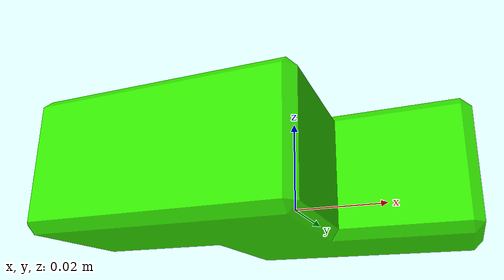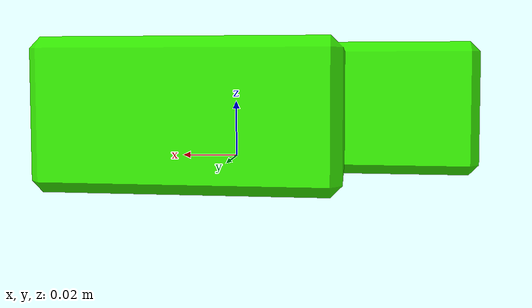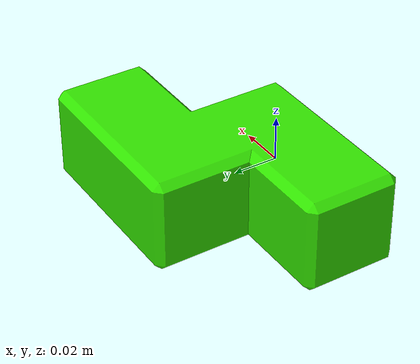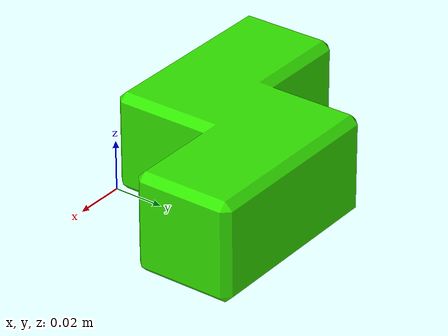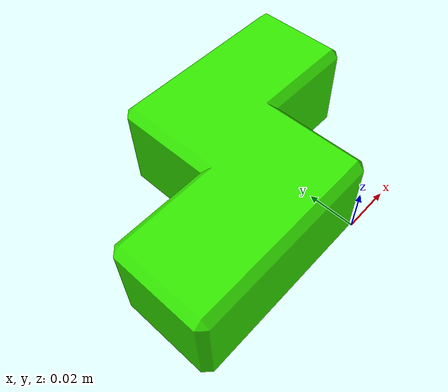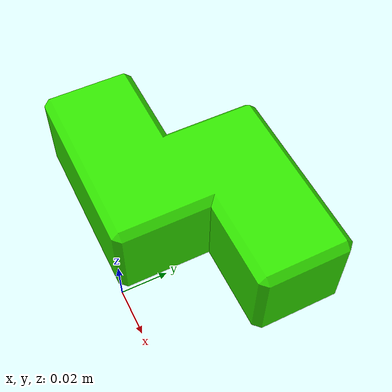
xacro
<?xml version="1.0" ?>
<robot name="Tetris_S" xmlns:xacro="http://www.ros.org/wiki/xacro">

<xacro:include filename="$(find Tetris_S_description)/urdf/materials.xacro" />

<material name="color">
  <color rgba="0.2 0.9 0.0 1.000"/>
</material>

<link name="base_link">
  <inertial>
    <origin xyz="-0.020000000000000004 0.04 0.020000000000000004" rpy="0 0 0"/>
    <mass value="0.26658999999999994"/>
    <inertia ixx="0.000175" iyy="0.00028" izz="0.000386" ixy="-0.000106" iyz="0.0" ixz="0.0"/>
  </inertial>

  <visual>
    <origin xyz="0 0 0" rpy="0 0 0"/>
    <geometry>
      <mesh filename="package://Tetris_S_description/meshes/base_link.stl" scale="0.001 0.001 0.001"/>
    </geometry>
    <material name="color"/>
  </visual>

  <collision>
    <origin xyz="-.04 .02 .02" rpy="0 0 0"/>
    <geometry>
      <box size="0.08 0.04 0.04"/> <!-- Adjust the size of the first box -->
      <origin xyz="0.0 0.0 0.02" rpy="0 0 0"/> <!-- Offset the first box by (0.05, 0.05, 0.05) -->
    </geometry>
  </collision>

  <collision>
    <origin xyz=".0 .06 .02" rpy="0 0 0"/>
    <geometry>
      <box size="0.08 0.04 0.04"/> <!-- Adjust the size of the first box -->
      <origin xyz="0.0 0.0 0.02" rpy="0 0 0"/> <!-- Offset the first box by (0.05, 0.05, 0.05) -->
    </geometry>
  </collision>
</link>

</robot>

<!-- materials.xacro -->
<robot name="Tetris_S" xmlns:xacro="http://www.ros.org/wiki/xacro" >

<material name="silver">
  <color rgba="0.700 0.700 0.700 1.000"/>
</material>

</robot>
